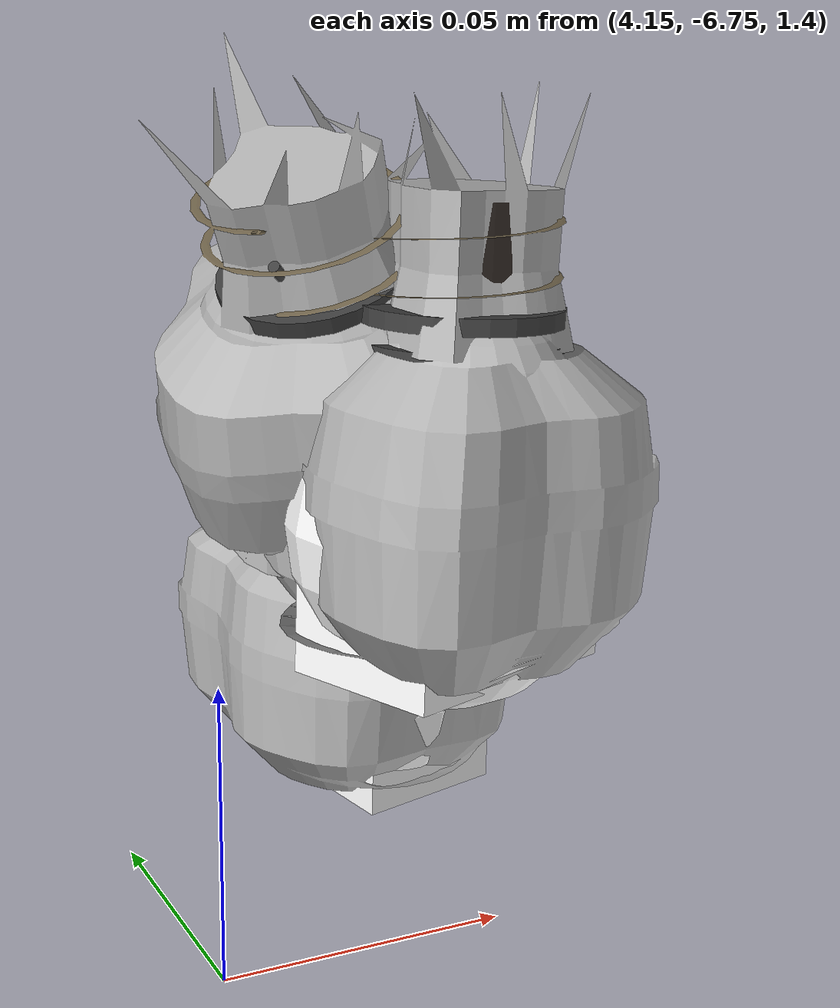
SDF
<sdf version="1.11">
 <world name="peach_orchard">
  <model name="ground">
   <static>true</static>
   <link name="link">
    <visual name="soil">
     <geometry><plane><normal>0 0 1</normal><size>32 22</size></plane></geometry>
     <material>
      <ambient>1 1 1 1</ambient>
      <diffuse>1 1 1 1</diffuse>
      <specular>0.1 0.1 0.1 1</specular>
      <pbr>
       <metal>
        <albedo_map>textures/soil_albedo.png</albedo_map>
        <normal_map type="tangent">textures/soil_normal.png</normal_map>
        <roughness>0.95</roughness>
        <metalness>0</metalness>
       </metal>
      </pbr>
     </material>
    </visual>
    <collision name="c_soil">
     <geometry><plane><normal>0 0 1</normal><size>32 22</size></plane></geometry>
    </collision>
   </link>
  </model>
  <model name="peach_tree_r3_t0_01">
   <pose>4.22 -6.64709 1.38677 0 0.0579959 -1.69479</pose>
   <static>true</static>
   <link name="bag">
    <visual name="bag_mesh">
     <pose>0 0 0.0421673 0 0 -0</pose>
     <geometry>
      <mesh><uri>model://peach_sim/meshes/bagged_peach.glb</uri><scale>0.929867 1.08529 0.958348</scale></mesh>
     </geometry>
    </visual>
    <visual name="body">
     <pose>0 0 0.0241673 0 0 0</pose>
     <geometry><ellipsoid><radii>0.03487 0.0282175 0.0261007</radii></ellipsoid></geometry>
     <material>
      <ambient>1 1 1 1</ambient>
      <diffuse>1 1 1 1</diffuse>
      <specular>0.1 0.1 0.1 1</specular>
      <pbr>
       <metal>
        <albedo_map>textures/paper_bag_albedo.png</albedo_map>
        <normal_map type="tangent">textures/paper_bag_normal.png</normal_map>
        <roughness>0.72</roughness>
        <metalness>0</metalness>
       </metal>
      </pbr>
     </material>
    </visual>
    <visual name="bottom_fold">
     <pose>0 0 0.012 0 0 0.35</pose>
     <geometry><box><size>0.0540485 0.0324501 0.022</size></box></geometry>
     <material>
      <ambient>1 1 1 1</ambient>
      <diffuse>1 1 1 1</diffuse>
      <specular>0.1 0.1 0.1 1</specular>
      <pbr>
       <metal>
        <albedo_map>textures/paper_bag_albedo.png</albedo_map>
        <normal_map type="tangent">textures/paper_bag_normal.png</normal_map>
        <roughness>0.8</roughness>
        <metalness>0</metalness>
       </metal>
      </pbr>
     </material>
    </visual>
    <visual name="fruit">
     <pose>0 0 0.0170189 0 0 0</pose>
     <geometry><sphere><radius>0.0239396</radius></sphere></geometry>
     <material>
      <ambient>1 1 1 1</ambient>
      <diffuse>1 1 1 1</diffuse>
      <specular>0.1 0.1 0.1 1</specular>
      <pbr>
       <metal>
        <albedo_map>textures/fruit_skin_albedo.png</albedo_map>
        <normal_map type="tangent">textures/fruit_skin_normal.png</normal_map>
        <roughness>0.55</roughness>
        <metalness>0</metalness>
       </metal>
      </pbr>
     </material>
    </visual>
    <visual name="neck">
     <pose>0 0 0.0573347 0 0 0</pose>
     <geometry><cylinder><radius>0.013</radius><length>0.018</length></cylinder></geometry>
     <material>
      <ambient>1 1 1 1</ambient>
      <diffuse>1 1 1 1</diffuse>
      <specular>0.1 0.1 0.1 1</specular>
      <pbr>
       <metal>
        <albedo_map>textures/paper_bag_albedo.png</albedo_map>
        <normal_map type="tangent">textures/paper_bag_normal.png</normal_map>
        <roughness>0.75</roughness>
        <metalness>0</metalness>
       </metal>
      </pbr>
     </material>
    </visual>
    <visual name="gather">
     <pose>0 0 0.0383347 0 0 0</pose>
     <geometry><cylinder><radius>0.019</radius><length>0.02</length></cylinder></geometry>
     <material>
      <ambient>1 1 1 1</ambient>
      <diffuse>1 1 1 1</diffuse>
      <specular>0.1 0.1 0.1 1</specular>
      <pbr>
       <metal>
        <albedo_map>textures/paper_bag_albedo.png</albedo_map>
        <normal_map type="tangent">textures/paper_bag_normal.png</normal_map>
        <roughness>0.8</roughness>
        <metalness>0</metalness>
       </metal>
      </pbr>
     </material>
    </visual>
    <visual name="inner_paper">
     <pose>0 0 0.0623347 0 0 0</pose>
     <geometry><cylinder><radius>0.01</radius><length>0.008</length></cylinder></geometry>
     <material>
      <ambient>0.180392 0.14902 0.133333 1</ambient>
      <diffuse>0.180392 0.14902 0.133333 1</diffuse>
      <specular>0.1 0.1 0.1 1</specular>
     </material>
    </visual>
    <visual name="wire_0">
     <pose>0 0 0.0523347 0 0 0</pose>
     <geometry><cylinder><radius>0.0205</radius><length>0.0035</length></cylinder></geometry>
     <material>
      <ambient>0.25 0.25 0.25 1</ambient>
      <diffuse>0.25 0.25 0.25 1</diffuse>
      <specular>0.1 0.1 0.1 1</specular>
     </material>
    </visual>
    <visual name="wire_1">
     <pose>0 0 0.0593347 0 0 0</pose>
     <geometry><cylinder><radius>0.0205</radius><length>0.0035</length></cylinder></geometry>
     <material>
      <ambient>0.25 0.25 0.25 1</ambient>
      <diffuse>0.25 0.25 0.25 1</diffuse>
      <specular>0.1 0.1 0.1 1</specular>
     </material>
    </visual>
    <visual name="wire_tail">
     <pose>0.01 0 0.0603347 0 0.521618 0</pose>
     <geometry><cylinder><radius>0.0012</radius><length>0.026</length></cylinder></geometry>
     <material>
      <ambient>0.25 0.25 0.25 1</ambient>
      <diffuse>0.25 0.25 0.25 1</diffuse>
      <specular>0.1 0.1 0.1 1</specular>
     </material>
    </visual>
    <collision name="c_body">
     <pose>0 0 0.0241673 0 0 0</pose>
     <geometry><cylinder><radius>0.03487</radius><length>0.0483347</length></cylinder></geometry>
    </collision>
   </link>
  </model>
  <model name="peach_tree_r3_t0_02">
   <pose>4.22 -6.69298 1.42351 0 0.0333802 0.0354902</pose>
   <static>true</static>
   <link name="bag">
    <visual name="bag_mesh">
     <pose>0 0 0.0489934 0 0 0</pose>
     <geometry>
      <mesh><uri>model://peach_sim/meshes/bagged_peach.glb</uri><scale>0.931223 1.14888 1.11349</scale></mesh>
     </geometry>
    </visual>
    <visual name="body">
     <pose>0 0 0.0309934 0 0 0</pose>
     <geometry><ellipsoid><radii>0.0349209 0.0298708 0.0334729</radii></ellipsoid></geometry>
     <material>
      <ambient>1 1 1 1</ambient>
      <diffuse>1 1 1 1</diffuse>
      <specular>0.1 0.1 0.1 1</specular>
      <pbr>
       <metal>
        <albedo_map>textures/paper_bag_albedo.png</albedo_map>
        <normal_map type="tangent">textures/paper_bag_normal.png</normal_map>
        <roughness>0.72</roughness>
        <metalness>0</metalness>
       </metal>
      </pbr>
     </material>
    </visual>
    <visual name="bottom_fold">
     <pose>0 0 0.012 0 0 0.35</pose>
     <geometry><box><size>0.0541274 0.0343514 0.022</size></box></geometry>
     <material>
      <ambient>1 1 1 1</ambient>
      <diffuse>1 1 1 1</diffuse>
      <specular>0.1 0.1 0.1 1</specular>
      <pbr>
       <metal>
        <albedo_map>textures/paper_bag_albedo.png</albedo_map>
        <normal_map type="tangent">textures/paper_bag_normal.png</normal_map>
        <roughness>0.8</roughness>
        <metalness>0</metalness>
       </metal>
      </pbr>
     </material>
    </visual>
    <visual name="fruit">
     <pose>0 0 0.0219081 0 0 0</pose>
     <geometry><sphere><radius>0.0290244</radius></sphere></geometry>
     <material>
      <ambient>1 1 1 1</ambient>
      <diffuse>1 1 1 1</diffuse>
      <specular>0.1 0.1 0.1 1</specular>
      <pbr>
       <metal>
        <albedo_map>textures/fruit_skin_albedo.png</albedo_map>
        <normal_map type="tangent">textures/fruit_skin_normal.png</normal_map>
        <roughness>0.55</roughness>
        <metalness>0</metalness>
       </metal>
      </pbr>
     </material>
    </visual>
    <visual name="neck">
     <pose>0 0 0.0709868 0 0 0</pose>
     <geometry><cylinder><radius>0.013</radius><length>0.018</length></cylinder></geometry>
     <material>
      <ambient>1 1 1 1</ambient>
      <diffuse>1 1 1 1</diffuse>
      <specular>0.1 0.1 0.1 1</specular>
      <pbr>
       <metal>
        <albedo_map>textures/paper_bag_albedo.png</albedo_map>
        <normal_map type="tangent">textures/paper_bag_normal.png</normal_map>
        <roughness>0.75</roughness>
        <metalness>0</metalness>
       </metal>
      </pbr>
     </material>
    </visual>
    <visual name="gather">
     <pose>0 0 0.0519868 0 0 0</pose>
     <geometry><cylinder><radius>0.019</radius><length>0.02</length></cylinder></geometry>
     <material>
      <ambient>1 1 1 1</ambient>
      <diffuse>1 1 1 1</diffuse>
      <specular>0.1 0.1 0.1 1</specular>
      <pbr>
       <metal>
        <albedo_map>textures/paper_bag_albedo.png</albedo_map>
        <normal_map type="tangent">textures/paper_bag_normal.png</normal_map>
        <roughness>0.8</roughness>
        <metalness>0</metalness>
       </metal>
      </pbr>
     </material>
    </visual>
    <visual name="inner_paper">
     <pose>0 0 0.0759868 0 0 0</pose>
     <geometry><cylinder><radius>0.01</radius><length>0.008</length></cylinder></geometry>
     <material>
      <ambient>0.180392 0.14902 0.133333 1</ambient>
      <diffuse>0.180392 0.14902 0.133333 1</diffuse>
      <specular>0.1 0.1 0.1 1</specular>
     </material>
    </visual>
    <visual name="wire_0">
     <pose>0 0 0.0659868 0 0 0</pose>
     <geometry><cylinder><radius>0.0205</radius><length>0.0035</length></cylinder></geometry>
     <material>
      <ambient>0.25 0.25 0.25 1</ambient>
      <diffuse>0.25 0.25 0.25 1</diffuse>
      <specular>0.1 0.1 0.1 1</specular>
     </material>
    </visual>
    <visual name="wire_1">
     <pose>0 0 0.0729868 0 0 0</pose>
     <geometry><cylinder><radius>0.0205</radius><length>0.0035</length></cylinder></geometry>
     <material>
      <ambient>0.25 0.25 0.25 1</ambient>
      <diffuse>0.25 0.25 0.25 1</diffuse>
      <specular>0.1 0.1 0.1 1</specular>
     </material>
    </visual>
    <visual name="wire_tail">
     <pose>0.01 0 0.0739868 0 0.521618 0</pose>
     <geometry><cylinder><radius>0.0012</radius><length>0.026</length></cylinder></geometry>
     <material>
      <ambient>0.25 0.25 0.25 1</ambient>
      <diffuse>0.25 0.25 0.25 1</diffuse>
      <specular>0.1 0.1 0.1 1</specular>
     </material>
    </visual>
    <collision name="c_body">
     <pose>0 0 0.0309934 0 0 0</pose>
     <geometry><cylinder><radius>0.0349209</radius><length>0.0619868</length></cylinder></geometry>
    </collision>
   </link>
  </model>
  <model name="peach_tree_r3_t0_03">
   <pose>4.22 -6.65229 1.45 0 0.459969 -2.38404</pose>
   <static>true</static>
   <link name="bag">
    <visual name="bag_mesh">
     <pose>0 0 0.0419936 0 0 -0</pose>
     <geometry>
      <mesh><uri>model://peach_sim/meshes/bagged_peach.glb</uri><scale>0.978082 1.13642 0.954399</scale></mesh>
     </geometry>
    </visual>
    <visual name="body">
     <pose>0 0 0.0239936 0 0 0</pose>
     <geometry><ellipsoid><radii>0.0366781 0.0295469 0.025913</radii></ellipsoid></geometry>
     <material>
      <ambient>1 1 1 1</ambient>
      <diffuse>1 1 1 1</diffuse>
      <specular>0.1 0.1 0.1 1</specular>
      <pbr>
       <metal>
        <albedo_map>textures/paper_bag_albedo.png</albedo_map>
        <normal_map type="tangent">textures/paper_bag_normal.png</normal_map>
        <roughness>0.72</roughness>
        <metalness>0</metalness>
       </metal>
      </pbr>
     </material>
    </visual>
    <visual name="bottom_fold">
     <pose>0 0 0.012 0 0 0.35</pose>
     <geometry><box><size>0.056851 0.033979 0.022</size></box></geometry>
     <material>
      <ambient>1 1 1 1</ambient>
      <diffuse>1 1 1 1</diffuse>
      <specular>0.1 0.1 0.1 1</specular>
      <pbr>
       <metal>
        <albedo_map>textures/paper_bag_albedo.png</albedo_map>
        <normal_map type="tangent">textures/paper_bag_normal.png</normal_map>
        <roughness>0.8</roughness>
        <metalness>0</metalness>
       </metal>
      </pbr>
     </material>
    </visual>
    <visual name="fruit">
     <pose>0 0 0.0215813 0 0 0</pose>
     <geometry><sphere><radius>0.0286845</radius></sphere></geometry>
     <material>
      <ambient>1 1 1 1</ambient>
      <diffuse>1 1 1 1</diffuse>
      <specular>0.1 0.1 0.1 1</specular>
      <pbr>
       <metal>
        <albedo_map>textures/fruit_skin_albedo.png</albedo_map>
        <normal_map type="tangent">textures/fruit_skin_normal.png</normal_map>
        <roughness>0.55</roughness>
        <metalness>0</metalness>
       </metal>
      </pbr>
     </material>
    </visual>
    <visual name="neck">
     <pose>0 0 0.0569871 0 0 0</pose>
     <geometry><cylinder><radius>0.013</radius><length>0.018</length></cylinder></geometry>
     <material>
      <ambient>1 1 1 1</ambient>
      <diffuse>1 1 1 1</diffuse>
      <specular>0.1 0.1 0.1 1</specular>
      <pbr>
       <metal>
        <albedo_map>textures/paper_bag_albedo.png</albedo_map>
        <normal_map type="tangent">textures/paper_bag_normal.png</normal_map>
        <roughness>0.75</roughness>
        <metalness>0</metalness>
       </metal>
      </pbr>
     </material>
    </visual>
    <visual name="gather">
     <pose>0 0 0.0379871 0 0 0</pose>
     <geometry><cylinder><radius>0.019</radius><length>0.02</length></cylinder></geometry>
     <material>
      <ambient>1 1 1 1</ambient>
      <diffuse>1 1 1 1</diffuse>
      <specular>0.1 0.1 0.1 1</specular>
      <pbr>
       <metal>
        <albedo_map>textures/paper_bag_albedo.png</albedo_map>
        <normal_map type="tangent">textures/paper_bag_normal.png</normal_map>
        <roughness>0.8</roughness>
        <metalness>0</metalness>
       </metal>
      </pbr>
     </material>
    </visual>
    <visual name="inner_paper">
     <pose>0 0 0.0619871 0 0 0</pose>
     <geometry><cylinder><radius>0.01</radius><length>0.008</length></cylinder></geometry>
     <material>
      <ambient>0.180392 0.14902 0.133333 1</ambient>
      <diffuse>0.180392 0.14902 0.133333 1</diffuse>
      <specular>0.1 0.1 0.1 1</specular>
     </material>
    </visual>
    <visual name="wire_0">
     <pose>0 0 0.0519871 0 0 0</pose>
     <geometry><cylinder><radius>0.0205</radius><length>0.0035</length></cylinder></geometry>
     <material>
      <ambient>0.25 0.25 0.25 1</ambient>
      <diffuse>0.25 0.25 0.25 1</diffuse>
      <specular>0.1 0.1 0.1 1</specular>
     </material>
    </visual>
    <visual name="wire_1">
     <pose>0 0 0.0589871 0 0 0</pose>
     <geometry><cylinder><radius>0.0205</radius><length>0.0035</length></cylinder></geometry>
     <material>
      <ambient>0.25 0.25 0.25 1</ambient>
      <diffuse>0.25 0.25 0.25 1</diffuse>
      <specular>0.1 0.1 0.1 1</specular>
     </material>
    </visual>
    <visual name="wire_tail">
     <pose>0.01 0 0.0599871 0 0.521618 0</pose>
     <geometry><cylinder><radius>0.0012</radius><length>0.026</length></cylinder></geometry>
     <material>
      <ambient>0.25 0.25 0.25 1</ambient>
      <diffuse>0.25 0.25 0.25 1</diffuse>
      <specular>0.1 0.1 0.1 1</specular>
     </material>
    </visual>
    <collision name="c_body">
     <pose>0 0 0.0239936 0 0 0</pose>
     <geometry><cylinder><radius>0.0366781</radius><length>0.0479871</length></cylinder></geometry>
    </collision>
   </link>
  </model>
 </world>
</sdf>
